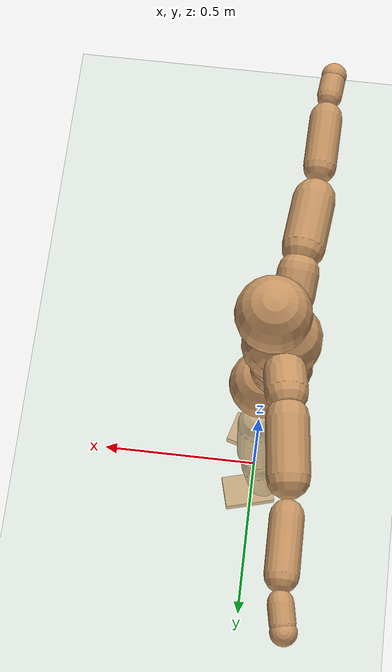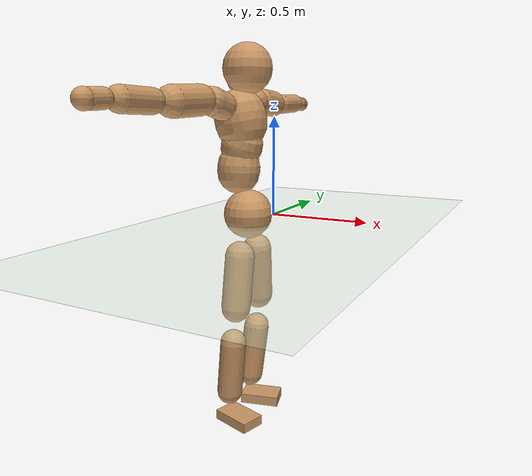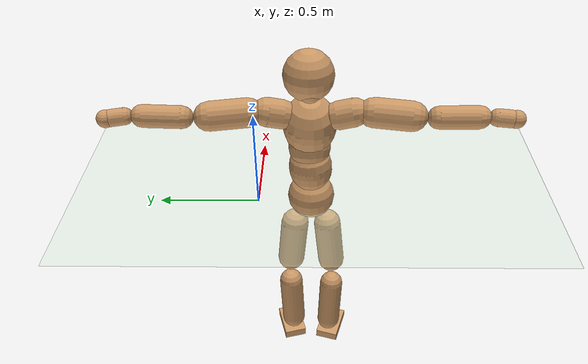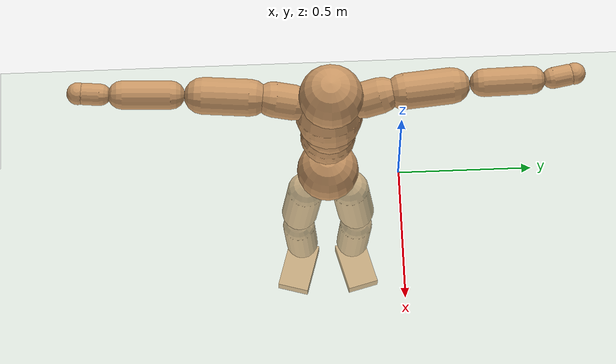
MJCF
<mujoco model="humanoid">
  <compiler coordinate="local"/>
  <default>
    <joint damping="0.0" armature="0.01" stiffness="0.0" limited="true"/>
    <geom conaffinity="1" condim="3" contype="7" margin="0.001" rgba="0.8 0.6 .4 1"/>
  </default>
  <asset>
    <texture type="skybox" builtin="gradient" rgb1=".4 .5 .6" rgb2="0 0 0" width="100" height="100"/>
    <texture builtin="flat" height="1278" mark="cross" markrgb="1 1 1" name="texgeom" random="0.01" rgb1="0.8 0.6 0.4" rgb2="0.8 0.6 0.4" type="cube" width="127"/>
    <texture builtin="checker" height="100" name="texplane" rgb1="0 0 0" rgb2="0.8 0.8 0.8" type="2d" width="100"/>
    <material name="MatPlane" reflectance="0.5" shininess="1" specular="1" texrepeat="60 60" texture="texplane"/>
    <material name="geom" texture="texgeom" texuniform="true"/>
  </asset>
  <worldbody>
    <light cutoff="100" diffuse="1 1 1" dir="-0 0 -1.3" directional="true" exponent="1" pos="0 0 1.3" specular=".1 .1 .1"/>
    <geom conaffinity="1" condim="3" name="floor" pos="0 0 0" rgba="0.8 0.9 0.8 1" size="100 100 .2" type="plane" material="MatPlane"/>
    <body name="Pelvis" pos="-0.0026 -0.2675 0.0464">
      <freejoint name="Pelvis"/>
      <geom type="sphere" contype="1" conaffinity="1" density="500" size="0.1164" pos="0.0000 0.0000 0.0000" name="Pelvis"/>
      <body name="L_Hip" pos="0.0043 0.0768 -0.1045">
        <joint name="L_Hip_x" type="hinge" pos="0 0 0" axis="1 0 0" stiffness="800" damping="80" armature="0.02" range="-180.0000 180.0000"/>
        <joint name="L_Hip_y" type="hinge" pos="0 0 0" axis="0 1 0" stiffness="800" damping="80" armature="0.02" range="-180.0000 180.0000"/>
        <joint name="L_Hip_z" type="hinge" pos="0 0 0" axis="0 0 1" stiffness="800" damping="80" armature="0.02" range="-180.0000 180.0000"/>
        <geom type="capsule" contype="1" conaffinity="1" density="500" fromto="-0.0016 0.0080 -0.0831 -0.0066 0.0321 -0.3324" size="0.0711" name="L_Hip"/>
        <body name="L_Knee" pos="-0.0082 0.0401 -0.4155">
          <joint name="L_Knee_x" type="hinge" pos="0 0 0" axis="1 0 0" stiffness="800" damping="80" armature="0.02" range="-180.0000 180.0000"/>
          <joint name="L_Knee_y" type="hinge" pos="0 0 0" axis="0 1 0" stiffness="800" damping="80" armature="0.02" range="-180.0000 180.0000"/>
          <joint name="L_Knee_z" type="hinge" pos="0 0 0" axis="0 0 1" stiffness="800" damping="80" armature="0.02" range="-180.0000 180.0000"/>
          <geom type="capsule" contype="1" conaffinity="1" density="500" fromto="-0.0103 -0.0039 -0.0917 -0.0411 -0.0154 -0.3669" size="0.0634" name="L_Knee"/>
          <body name="L_Ankle" pos="-0.0514 -0.0193 -0.4586">
            <joint name="L_Ankle_x" type="hinge" pos="0 0 0" axis="1 0 0" stiffness="800" damping="80" armature="0.02" range="-180.0000 180.0000"/>
            <joint name="L_Ankle_y" type="hinge" pos="0 0 0" axis="0 1 0" stiffness="800" damping="80" armature="0.02" range="-180.0000 180.0000"/>
            <joint name="L_Ankle_z" type="hinge" pos="0 0 0" axis="0 0 1" stiffness="800" damping="80" armature="0.02" range="-180.0000 180.0000"/>
            <geom type="box" contype="1" conaffinity="1" density="500" pos="0.0688 0.0184 -0.0311" size="0.0973 0.0608 0.0246" quat="0.9915 0.0000 0.0000 0.1301" name="L_Ankle"/>
            <body name="L_Toe" pos="0.1376 0.0367 -0.0622">
              <joint name="L_Toe_x" type="hinge" pos="0 0 0" axis="1 0 0" stiffness="500" damping="50" armature="0.02" range="-180.0000 180.0000"/>
              <joint name="L_Toe_y" type="hinge" pos="0 0 0" axis="0 1 0" stiffness="500" damping="50" armature="0.02" range="-180.0000 180.0000"/>
              <joint name="L_Toe_z" type="hinge" pos="0 0 0" axis="0 0 1" stiffness="500" damping="50" armature="0.02" range="-180.0000 180.0000"/>
              <geom type="box" contype="1" conaffinity="1" density="500" pos="0.0000 0.0000 0.0311" size="0.0012 0.0029 0.0012" quat="0.9909 0.0000 0.0000 0.1349" name="L_Toe"/>
            </body>
          </body>
        </body>
      </body>
      <body name="R_Hip" pos="0.0055 -0.0761 -0.1035">
        <joint name="R_Hip_x" type="hinge" pos="0 0 0" axis="1 0 0" stiffness="800" damping="80" armature="0.02" range="-180.0000 180.0000"/>
        <joint name="R_Hip_y" type="hinge" pos="0 0 0" axis="0 1 0" stiffness="800" damping="80" armature="0.02" range="-180.0000 180.0000"/>
        <joint name="R_Hip_z" type="hinge" pos="0 0 0" axis="0 0 1" stiffness="800" damping="80" armature="0.02" range="-180.0000 180.0000"/>
        <geom type="capsule" contype="1" conaffinity="1" density="500" fromto="-0.0034 -0.0084 -0.0853 -0.0134 -0.0337 -0.3414" size="0.0695" name="R_Hip"/>
        <body name="R_Knee" pos="-0.0168 -0.0421 -0.4267">
          <joint name="R_Knee_x" type="hinge" pos="0 0 0" axis="1 0 0" stiffness="800" damping="80" armature="0.02" range="-180.0000 180.0000"/>
          <joint name="R_Knee_y" type="hinge" pos="0 0 0" axis="0 1 0" stiffness="800" damping="80" armature="0.02" range="-180.0000 180.0000"/>
          <joint name="R_Knee_z" type="hinge" pos="0 0 0" axis="0 0 1" stiffness="800" damping="80" armature="0.02" range="-180.0000 180.0000"/>
          <geom type="capsule" contype="1" conaffinity="1" density="500" fromto="-0.0102 0.0041 -0.0923 -0.0407 0.0163 -0.3693" size="0.0627" name="R_Knee"/>
          <body name="R_Ankle" pos="-0.0509 0.0204 -0.4616">
            <joint name="R_Ankle_x" type="hinge" pos="0 0 0" axis="1 0 0" stiffness="800" damping="80" armature="0.02" range="-180.0000 180.0000"/>
            <joint name="R_Ankle_y" type="hinge" pos="0 0 0" axis="0 1 0" stiffness="800" damping="80" armature="0.02" range="-180.0000 180.0000"/>
            <joint name="R_Ankle_z" type="hinge" pos="0 0 0" axis="0 0 1" stiffness="800" damping="80" armature="0.02" range="-180.0000 180.0000"/>
            <geom type="box" contype="1" conaffinity="1" density="500" pos="0.0716 -0.0208 -0.0281" size="0.0993 0.0612 0.0243" quat="0.9901 0.0000 0.0000 -0.1406" name="R_Ankle"/>
            <body name="R_Toe" pos="0.1433 -0.0415 -0.0561">
              <joint name="R_Toe_x" type="hinge" pos="0 0 0" axis="1 0 0" stiffness="500" damping="50" armature="0.02" range="-180.0000 180.0000"/>
              <joint name="R_Toe_y" type="hinge" pos="0 0 0" axis="0 1 0" stiffness="500" damping="50" armature="0.02" range="-180.0000 180.0000"/>
              <joint name="R_Toe_z" type="hinge" pos="0 0 0" axis="0 0 1" stiffness="500" damping="50" armature="0.02" range="-180.0000 180.0000"/>
              <geom type="box" contype="1" conaffinity="1" density="500" pos="0.0000 0.0000 0.0293" size="0.0013 0.0029 0.0013" quat="0.9912 0.0000 0.0000 -0.1325" name="R_Toe"/>
            </body>
          </body>
        </body>
      </body>
      <body name="Torso" pos="-0.0525 -0.0025 0.1347">
        <joint name="Torso_x" type="hinge" pos="0 0 0" axis="1 0 0" stiffness="1000" damping="100" armature="0.02" range="-180.0000 180.0000"/>
        <joint name="Torso_y" type="hinge" pos="0 0 0" axis="0 1 0" stiffness="1000" damping="100" armature="0.02" range="-180.0000 180.0000"/>
        <joint name="Torso_z" type="hinge" pos="0 0 0" axis="0 0 1" stiffness="1000" damping="100" armature="0.02" range="-180.0000 180.0000"/>
        <geom type="capsule" contype="1" conaffinity="1" density="500" fromto="0.0015 0.0059 0.0919 0.0010 0.0039 0.0613" size="0.1022" name="Torso"/>
        <body name="Spine" pos="0.0025 0.0098 0.1532">
          <joint name="Spine_x" type="hinge" pos="0 0 0" axis="1 0 0" stiffness="1000" damping="100" armature="0.02" range="-180.0000 180.0000"/>
          <joint name="Spine_y" type="hinge" pos="0 0 0" axis="0 1 0" stiffness="1000" damping="100" armature="0.02" range="-180.0000 180.0000"/>
          <joint name="Spine_z" type="hinge" pos="0 0 0" axis="0 0 1" stiffness="1000" damping="100" armature="0.02" range="-180.0000 180.0000"/>
          <geom type="capsule" contype="1" conaffinity="1" density="500" fromto="0.0162 -0.0002 0.0391 0.0108 -0.0001 0.0261" size="0.0992" name="Spine"/>
          <body name="Chest" pos="0.0271 -0.0003 0.0651">
            <joint name="Chest_x" type="hinge" pos="0 0 0" axis="1 0 0" stiffness="1000" damping="100" armature="0.02" range="-180.0000 180.0000"/>
            <joint name="Chest_y" type="hinge" pos="0 0 0" axis="0 1 0" stiffness="1000" damping="100" armature="0.02" range="-180.0000 180.0000"/>
            <joint name="Chest_z" type="hinge" pos="0 0 0" axis="0 0 1" stiffness="1000" damping="100" armature="0.02" range="-180.0000 180.0000"/>
            <geom type="capsule" contype="1" conaffinity="1" density="500" fromto="-0.0216 -0.0017 0.1065 -0.0144 -0.0011 0.0710" size="0.1227" name="Chest"/>
            <body name="Neck" pos="-0.0379 -0.0031 0.247">
              <joint name="Neck_x" type="hinge" pos="0 0 0" axis="1 0 0" stiffness="500" damping="50" armature="0.02" range="-180.0000 180.0000"/>
              <joint name="Neck_y" type="hinge" pos="0 0 0" axis="0 1 0" stiffness="500" damping="50" armature="0.02" range="-180.0000 180.0000"/>
              <joint name="Neck_z" type="hinge" pos="0 0 0" axis="0 0 1" stiffness="500" damping="50" armature="0.02" range="-180.0000 180.0000"/>
              <geom type="capsule" contype="1" conaffinity="1" density="500" fromto="0.0109 0.0014 0.0135 0.0438 0.0057 0.0540" size="0.0541" name="Neck"/>
              <body name="Head" pos="0.0547 0.0071 0.0676">
                <joint name="Head_x" type="hinge" pos="0 0 0" axis="1 0 0" stiffness="500" damping="50" armature="0.02" range="-180.0000 180.0000"/>
                <joint name="Head_y" type="hinge" pos="0 0 0" axis="0 1 0" stiffness="500" damping="50" armature="0.02" range="-180.0000 180.0000"/>
                <joint name="Head_z" type="hinge" pos="0 0 0" axis="0 0 1" stiffness="500" damping="50" armature="0.02" range="-180.0000 180.0000"/>
                <geom type="sphere" contype="1" conaffinity="1" density="500" size="0.1156" pos="0.0000 0.0000 0.0000" name="Head"/>
              </body>
            </body>
            <body name="L_Thorax" pos="-0.0332 0.0987 0.1449">
              <joint name="L_Thorax_x" type="hinge" pos="0 0 0" axis="1 0 0" stiffness="500" damping="50" armature="0.02" range="-180.0000 180.0000"/>
              <joint name="L_Thorax_y" type="hinge" pos="0 0 0" axis="0 1 0" stiffness="500" damping="50" armature="0.02" range="-180.0000 180.0000"/>
              <joint name="L_Thorax_z" type="hinge" pos="0 0 0" axis="0 0 1" stiffness="500" damping="50" armature="0.02" range="-180.0000 180.0000"/>
              <geom type="capsule" contype="1" conaffinity="1" density="500" fromto="-0.0035 0.0225 0.0057 -0.0139 0.0901 0.0227" size="0.0662" name="L_Thorax"/>
              <body name="L_Shoulder" pos="-0.0174 0.1126 0.0284">
                <joint name="L_Shoulder_x" type="hinge" pos="0 0 0" axis="1 0 0" stiffness="500" damping="50" armature="0.02" range="-720.0000 720.0000"/>
                <joint name="L_Shoulder_y" type="hinge" pos="0 0 0" axis="0 1 0" stiffness="500" damping="50" armature="0.02" range="-720.0000 720.0000"/>
                <joint name="L_Shoulder_z" type="hinge" pos="0 0 0" axis="0 0 1" stiffness="500" damping="50" armature="0.02" range="-720.0000 720.0000"/>
                <geom type="capsule" contype="1" conaffinity="1" density="500" fromto="-0.0065 0.0581 -0.0026 -0.0260 0.2322 -0.0104" size="0.0665" name="L_Shoulder"/>
                <body name="L_Elbow" pos="-0.0326 0.2903 -0.013">
                  <joint name="L_Elbow_x" type="hinge" pos="0 0 0" axis="1 0 0" stiffness="500" damping="50" armature="0.02" range="-720.0000 720.0000"/>
                  <joint name="L_Elbow_y" type="hinge" pos="0 0 0" axis="0 1 0" stiffness="500" damping="50" armature="0.02" range="-720.0000 720.0000"/>
                  <joint name="L_Elbow_z" type="hinge" pos="0 0 0" axis="0 0 1" stiffness="500" damping="50" armature="0.02" range="-720.0000 720.0000"/>
                  <geom type="capsule" contype="1" conaffinity="1" density="500" fromto="-0.0004 0.0575 0.0021 -0.0015 0.2298 0.0082" size="0.0512" name="L_Elbow"/>
                  <body name="L_Wrist" pos="-0.0019 0.2873 0.0103">
                    <joint name="L_Wrist_x" type="hinge" pos="0 0 0" axis="1 0 0" stiffness="300" damping="30" armature="0.02" range="-180.0000 180.0000"/>
                    <joint name="L_Wrist_y" type="hinge" pos="0 0 0" axis="0 1 0" stiffness="300" damping="30" armature="0.02" range="-180.0000 180.0000"/>
                    <joint name="L_Wrist_z" type="hinge" pos="0 0 0" axis="0 0 1" stiffness="300" damping="30" armature="0.02" range="-180.0000 180.0000"/>
                    <geom type="capsule" contype="1" conaffinity="1" density="500" fromto="-0.0040 0.0201 -0.0009 -0.0161 0.0803 -0.0036" size="0.0387" name="L_Wrist"/>
                    <body name="L_Hand" pos="-0.0202 0.1004 -0.0045">
                      <joint name="L_Hand_x" type="hinge" pos="0 0 0" axis="1 0 0" stiffness="300" damping="30" armature="0.02" range="-180.0000 180.0000"/>
                      <joint name="L_Hand_y" type="hinge" pos="0 0 0" axis="0 1 0" stiffness="300" damping="30" armature="0.02" range="-180.0000 180.0000"/>
                      <joint name="L_Hand_z" type="hinge" pos="0 0 0" axis="0 0 1" stiffness="300" damping="30" armature="0.02" range="-180.0000 180.0000"/>
                      <geom type="sphere" contype="1" conaffinity="1" density="500" size="0.0399" pos="0.0000 0.0000 0.0000" name="L_Hand"/>
                    </body>
                  </body>
                </body>
              </body>
            </body>
            <body name="R_Thorax" pos="-0.0371 -0.1041 0.1404">
              <joint name="R_Thorax_x" type="hinge" pos="0 0 0" axis="1 0 0" stiffness="500" damping="50" armature="0.02" range="-180.0000 180.0000"/>
              <joint name="R_Thorax_y" type="hinge" pos="0 0 0" axis="0 1 0" stiffness="500" damping="50" armature="0.02" range="-180.0000 180.0000"/>
              <joint name="R_Thorax_z" type="hinge" pos="0 0 0" axis="0 0 1" stiffness="500" damping="50" armature="0.02" range="-180.0000 180.0000"/>
              <geom type="capsule" contype="1" conaffinity="1" density="500" fromto="-0.0021 -0.0243 0.0067 -0.0083 -0.0972 0.0267" size="0.0652" name="R_Thorax"/>
              <body name="R_Shoulder" pos="-0.0103 -0.1216 0.0334">
                <joint name="R_Shoulder_x" type="hinge" pos="0 0 0" axis="1 0 0" stiffness="500" damping="50" armature="0.02" range="-720.0000 720.0000"/>
                <joint name="R_Shoulder_y" type="hinge" pos="0 0 0" axis="0 1 0" stiffness="500" damping="50" armature="0.02" range="-720.0000 720.0000"/>
                <joint name="R_Shoulder_z" type="hinge" pos="0 0 0" axis="0 0 1" stiffness="500" damping="50" armature="0.02" range="-720.0000 720.0000"/>
                <geom type="capsule" contype="1" conaffinity="1" density="500" fromto="-0.0060 -0.0572 -0.0026 -0.0242 -0.2287 -0.0103" size="0.0679" name="R_Shoulder"/>
                <body name="R_Elbow" pos="-0.0302 -0.2859 -0.0129">
                  <joint name="R_Elbow_x" type="hinge" pos="0 0 0" axis="1 0 0" stiffness="500" damping="50" armature="0.02" range="-720.0000 720.0000"/>
                  <joint name="R_Elbow_y" type="hinge" pos="0 0 0" axis="0 1 0" stiffness="500" damping="50" armature="0.02" range="-720.0000 720.0000"/>
                  <joint name="R_Elbow_z" type="hinge" pos="0 0 0" axis="0 0 1" stiffness="500" damping="50" armature="0.02" range="-720.0000 720.0000"/>
                  <geom type="capsule" contype="1" conaffinity="1" density="500" fromto="-0.0016 -0.0582 0.0017 -0.0064 -0.2327 0.0067" size="0.0522" name="R_Elbow"/>
                  <body name="R_Wrist" pos="-0.008 -0.2909 0.0084">
                    <joint name="R_Wrist_x" type="hinge" pos="0 0 0" axis="1 0 0" stiffness="300" damping="30" armature="0.02" range="-180.0000 180.0000"/>
                    <joint name="R_Wrist_y" type="hinge" pos="0 0 0" axis="0 1 0" stiffness="300" damping="30" armature="0.02" range="-180.0000 180.0000"/>
                    <joint name="R_Wrist_z" type="hinge" pos="0 0 0" axis="0 0 1" stiffness="300" damping="30" armature="0.02" range="-180.0000 180.0000"/>
                    <geom type="capsule" contype="1" conaffinity="1" density="500" fromto="-0.0022 -0.0202 -0.0007 -0.0087 -0.0810 -0.0028" size="0.0398" name="R_Wrist"/>
                    <body name="R_Hand" pos="-0.0109 -0.1012 -0.0035">
                      <joint name="R_Hand_x" type="hinge" pos="0 0 0" axis="1 0 0" stiffness="300" damping="30" armature="0.02" range="-180.0000 180.0000"/>
                      <joint name="R_Hand_y" type="hinge" pos="0 0 0" axis="0 1 0" stiffness="300" damping="30" armature="0.02" range="-180.0000 180.0000"/>
                      <joint name="R_Hand_z" type="hinge" pos="0 0 0" axis="0 0 1" stiffness="300" damping="30" armature="0.02" range="-180.0000 180.0000"/>
                      <geom type="sphere" contype="1" conaffinity="1" density="500" size="0.0409" pos="0.0000 0.0000 0.0000" name="R_Hand"/>
                    </body>
                  </body>
                </body>
              </body>
            </body>
          </body>
        </body>
      </body>
    </body>
  </worldbody>
  <actuator>
    <motor name="L_Hip_x" joint="L_Hip_x" gear="500"/>
    <motor name="L_Hip_y" joint="L_Hip_y" gear="500"/>
    <motor name="L_Hip_z" joint="L_Hip_z" gear="500"/>
    <motor name="L_Knee_x" joint="L_Knee_x" gear="500"/>
    <motor name="L_Knee_y" joint="L_Knee_y" gear="500"/>
    <motor name="L_Knee_z" joint="L_Knee_z" gear="500"/>
    <motor name="L_Ankle_x" joint="L_Ankle_x" gear="500"/>
    <motor name="L_Ankle_y" joint="L_Ankle_y" gear="500"/>
    <motor name="L_Ankle_z" joint="L_Ankle_z" gear="500"/>
    <motor name="L_Toe_x" joint="L_Toe_x" gear="500"/>
    <motor name="L_Toe_y" joint="L_Toe_y" gear="500"/>
    <motor name="L_Toe_z" joint="L_Toe_z" gear="500"/>
    <motor name="R_Hip_x" joint="R_Hip_x" gear="500"/>
    <motor name="R_Hip_y" joint="R_Hip_y" gear="500"/>
    <motor name="R_Hip_z" joint="R_Hip_z" gear="500"/>
    <motor name="R_Knee_x" joint="R_Knee_x" gear="500"/>
    <motor name="R_Knee_y" joint="R_Knee_y" gear="500"/>
    <motor name="R_Knee_z" joint="R_Knee_z" gear="500"/>
    <motor name="R_Ankle_x" joint="R_Ankle_x" gear="500"/>
    <motor name="R_Ankle_y" joint="R_Ankle_y" gear="500"/>
    <motor name="R_Ankle_z" joint="R_Ankle_z" gear="500"/>
    <motor name="R_Toe_x" joint="R_Toe_x" gear="500"/>
    <motor name="R_Toe_y" joint="R_Toe_y" gear="500"/>
    <motor name="R_Toe_z" joint="R_Toe_z" gear="500"/>
    <motor name="Torso_x" joint="Torso_x" gear="500"/>
    <motor name="Torso_y" joint="Torso_y" gear="500"/>
    <motor name="Torso_z" joint="Torso_z" gear="500"/>
    <motor name="Spine_x" joint="Spine_x" gear="500"/>
    <motor name="Spine_y" joint="Spine_y" gear="500"/>
    <motor name="Spine_z" joint="Spine_z" gear="500"/>
    <motor name="Chest_x" joint="Chest_x" gear="500"/>
    <motor name="Chest_y" joint="Chest_y" gear="500"/>
    <motor name="Chest_z" joint="Chest_z" gear="500"/>
    <motor name="Neck_x" joint="Neck_x" gear="500"/>
    <motor name="Neck_y" joint="Neck_y" gear="500"/>
    <motor name="Neck_z" joint="Neck_z" gear="500"/>
    <motor name="Head_x" joint="Head_x" gear="500"/>
    <motor name="Head_y" joint="Head_y" gear="500"/>
    <motor name="Head_z" joint="Head_z" gear="500"/>
    <motor name="L_Thorax_x" joint="L_Thorax_x" gear="500"/>
    <motor name="L_Thorax_y" joint="L_Thorax_y" gear="500"/>
    <motor name="L_Thorax_z" joint="L_Thorax_z" gear="500"/>
    <motor name="L_Shoulder_x" joint="L_Shoulder_x" gear="500"/>
    <motor name="L_Shoulder_y" joint="L_Shoulder_y" gear="500"/>
    <motor name="L_Shoulder_z" joint="L_Shoulder_z" gear="500"/>
    <motor name="L_Elbow_x" joint="L_Elbow_x" gear="500"/>
    <motor name="L_Elbow_y" joint="L_Elbow_y" gear="500"/>
    <motor name="L_Elbow_z" joint="L_Elbow_z" gear="500"/>
    <motor name="L_Wrist_x" joint="L_Wrist_x" gear="500"/>
    <motor name="L_Wrist_y" joint="L_Wrist_y" gear="500"/>
    <motor name="L_Wrist_z" joint="L_Wrist_z" gear="500"/>
    <motor name="L_Hand_x" joint="L_Hand_x" gear="500"/>
    <motor name="L_Hand_y" joint="L_Hand_y" gear="500"/>
    <motor name="L_Hand_z" joint="L_Hand_z" gear="500"/>
    <motor name="R_Thorax_x" joint="R_Thorax_x" gear="500"/>
    <motor name="R_Thorax_y" joint="R_Thorax_y" gear="500"/>
    <motor name="R_Thorax_z" joint="R_Thorax_z" gear="500"/>
    <motor name="R_Shoulder_x" joint="R_Shoulder_x" gear="500"/>
    <motor name="R_Shoulder_y" joint="R_Shoulder_y" gear="500"/>
    <motor name="R_Shoulder_z" joint="R_Shoulder_z" gear="500"/>
    <motor name="R_Elbow_x" joint="R_Elbow_x" gear="500"/>
    <motor name="R_Elbow_y" joint="R_Elbow_y" gear="500"/>
    <motor name="R_Elbow_z" joint="R_Elbow_z" gear="500"/>
    <motor name="R_Wrist_x" joint="R_Wrist_x" gear="500"/>
    <motor name="R_Wrist_y" joint="R_Wrist_y" gear="500"/>
    <motor name="R_Wrist_z" joint="R_Wrist_z" gear="500"/>
    <motor name="R_Hand_x" joint="R_Hand_x" gear="500"/>
    <motor name="R_Hand_y" joint="R_Hand_y" gear="500"/>
    <motor name="R_Hand_z" joint="R_Hand_z" gear="500"/>
  </actuator>
  <contact>
    <exclude body1="Torso" body2="Chest"/>
    <exclude body1="Head" body2="Chest"/>
    <exclude body1="R_Knee" body2="R_Toe"/>
    <exclude body1="R_Knee" body2="L_Ankle"/>
    <exclude body1="R_Knee" body2="L_Toe"/>
    <exclude body1="L_Knee" body2="L_Toe"/>
    <exclude body1="L_Knee" body2="R_Ankle"/>
    <exclude body1="L_Knee" body2="R_Toe"/>
    <exclude body1="L_Shoulder" body2="Chest"/>
    <exclude body1="R_Shoulder" body2="Chest"/>
  </contact>
  <sensor/>
  <size njmax="700" nconmax="700"/>
</mujoco>
